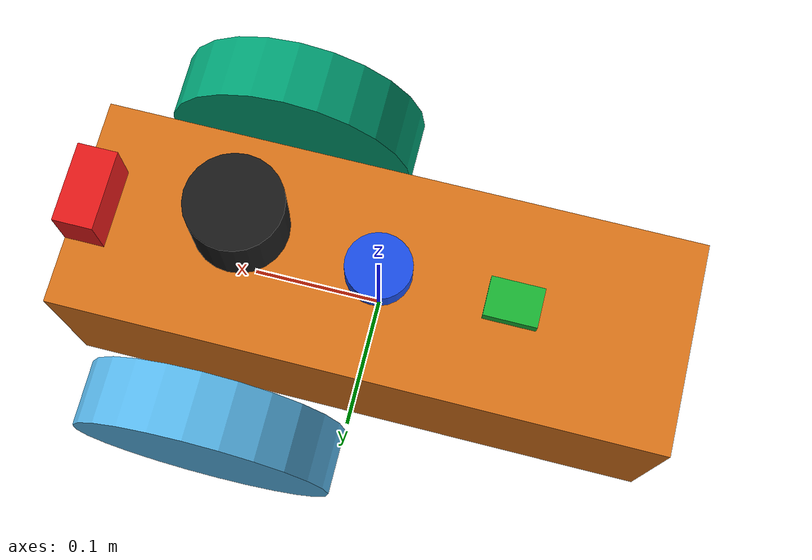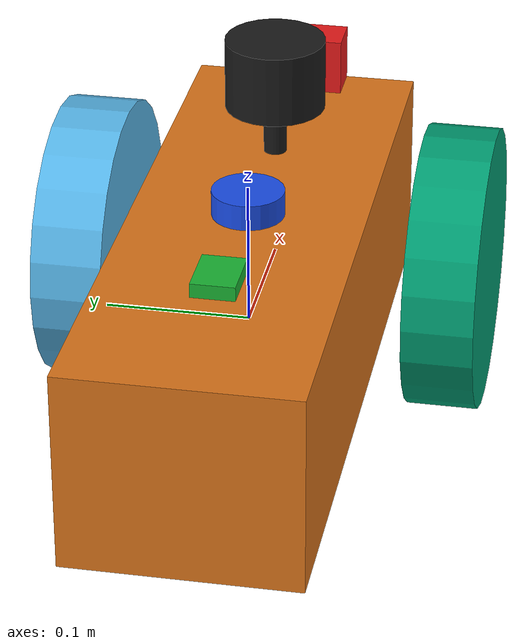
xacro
<?xml version="1.0"?>
<robot name="my_robot" xmlns:xacro="http://www.ros.org/wiki/xacro">
  <xacro:arg name="chassis_mesh" default="false"/>
  <link name="chassis">
    <inertial>
      <mass value="1.0"/>
      <origin xyz="0 0 0" rpy="0 0 0"/>
      <inertia ixx="0.02083" ixy="0.0" ixz="0.0" iyy="0.07083" iyz="0.0" izz="0.08333"/>
    </inertial>

    <collision>
      <origin xyz="0 0 0" rpy="0 0 0"/>
      <geometry>
        <box size="0.4 0.2 0.1"/>
      </geometry>
    </collision>
    <xacro:if value="$(arg chassis_mesh)">
      <visual>
        <origin xyz="0 0 0.05" rpy="0 0 0"/>
        <geometry>
          <mesh filename="package://pioneer2dx/meshes/chassis.dae" scale="0.9 0.5 0.5"/>
        </geometry>
      </visual>
    </xacro:if>
    <xacro:unless value="$(arg chassis_mesh)">
      <visual>
        <origin xyz="0 0 0.01" rpy="0 0 0"/>
        <geometry>
          <box size="0.46 0.16 0.14"/>
        </geometry>
        <material name="chassis_color"><color rgba="0.85 0.45 0.1 1.0"/></material>
      </visual>
    </xacro:unless>

    <collision>
      <origin xyz="-0.15 0 -0.05" rpy="0 0 0"/>
      <geometry>
        <sphere radius="0.05"/>
      </geometry>
    </collision>

    <visual>
      <origin xyz="-0.15 0 -0.05" rpy="0 0 0"/>
      <geometry>
        <sphere radius="0.05"/>
      </geometry>
    </visual>
  </link>

  <link name="left_wheel">
    <inertial>
      <mass value="0.5"/>
      <origin xyz="0 0 0" rpy="0 0 0"/>
      <inertia ixx="0.0027083" ixy="0.0" ixz="0.0" iyy="0.0027083" iyz="0.0" izz="0.005"/>
    </inertial>
    <collision>
      <geometry>
        <cylinder radius="0.1" length="0.05"/>
      </geometry>
    </collision>
    <visual>
      <geometry>
        <cylinder radius="0.1" length="0.05"/>
      </geometry>
    </visual>
  </link>

  <link name="right_wheel">
    <inertial>
      <origin xyz="0 0 0" rpy="0 0 0"/>
      <mass value="0.5"/>
      <inertia ixx="0.0027083" ixy="0.0" ixz="0.0" iyy="0.0027083" iyz="0.0" izz="0.005"/>
    </inertial>
    <collision>
      <geometry>
        <cylinder radius="0.1" length="0.05"/>
      </geometry>
    </collision>
    <visual>
      <geometry>
        <cylinder radius="0.1" length="0.05"/>
      </geometry>
    </visual>
  </link>

  <joint name="left_wheel_hinge" type="continuous">
    <origin xyz="0.1 0.13 0" rpy="0 1.5707 1.5707"/>
    <parent link="chassis"/>
    <child link="left_wheel"/>
    <axis xyz="0 0 1"/>
    <dynamics damping="0.05" friction="0.02"/>
  </joint>

  <joint name="right_wheel_hinge" type="continuous">
    <origin xyz="0.1 -0.13 0" rpy="0 1.5707 1.5707"/>
    <parent link="chassis"/>
    <child link="right_wheel"/>
    <axis xyz="0 0 1"/>
    <dynamics damping="0.05" friction="0.02"/>
  </joint>

  <gazebo reference="left_wheel">
    <mu1>1.0</mu1>
    <mu2>1.0</mu2>
  </gazebo>

  <gazebo reference="right_wheel">
    <mu1>1.0</mu1>
    <mu2>1.0</mu2>
  </gazebo>

  <gazebo reference="chassis">
    <mu1>0.0</mu1>
    <mu2>0.0</mu2>
  </gazebo>

  <gazebo>
    <static>false</static>
  </gazebo>

  <xacro:include filename="$(find robot_control)/urdf/sensors.xacro"/>

  <gazebo>
    <plugin name="ground_truth" filename="libgazebo_ros_p3d.so">
      <ros><namespace>/ground_truth</namespace></ros>
      <body_name>chassis</body_name>
      <frame_name>world</frame_name>
      <update_rate>50.0</update_rate>
      <gaussian_noise>0.0</gaussian_noise>
    </plugin>
  </gazebo>

  <gazebo>
    <plugin filename="libgazebo_ros2_control.so" name="gazebo_ros2_control">
      <parameters>$(find robot_control)/config/my_robot_controllers.yaml</parameters>
    </plugin>
  </gazebo>

  <ros2_control name="GazeboSystem" type="system">
    <hardware>
      <plugin>gazebo_ros2_control/GazeboSystem</plugin>
    </hardware>
    <joint name="left_wheel_hinge">
      <param name="vel_kp">1.0</param>
      <param name="vel_ki">0.5</param>
      <param name="vel_kd">0.0</param>
      <param name="vel_max_integral_error">10</param>

      <command_interface name="velocity_pid"/>
      <state_interface name="position"/>
      <state_interface name="velocity"/>
    </joint>
    <joint name="right_wheel_hinge">
      <param name="vel_kp">1.0</param>
      <param name="vel_ki">0.5</param>
      <param name="vel_kd">0.0</param>
      <param name="vel_max_integral_error">10</param>

      <command_interface name="velocity_pid"/>
      <state_interface name="position"/>
      <state_interface name="velocity"/>
    </joint>
  </ros2_control>

</robot>

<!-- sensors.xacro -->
<robot xmlns:xacro="http://www.ros.org/wiki/xacro">

  <xacro:arg name="noise_scale"  default="1.0"/>
  <xacro:arg name="imu_noise"    default="1.0"/>
  <xacro:arg name="gps_noise"    default="1.0"/>
  <xacro:arg name="lidar_noise"  default="1.0"/>
  <xacro:arg name="camera_noise" default="1.0"/>

  <xacro:property name="ns"    value="$(arg noise_scale)"/>
  <xacro:property name="k_imu" value="${ns * float('$(arg imu_noise)')}"/>
  <xacro:property name="k_gps" value="${ns * float('$(arg gps_noise)')}"/>
  <xacro:property name="k_lid" value="${ns * float('$(arg lidar_noise)')}"/>
  <xacro:property name="k_cam" value="${ns * float('$(arg camera_noise)')}"/>

  <xacro:property name="imu_gyro_std"  value="0.002"/>
  <xacro:property name="imu_gyro_bias" value="0.0005"/>
  <xacro:property name="imu_acc_std"   value="0.02"/>
  <xacro:property name="gps_h_std"     value="0.05"/>
  <xacro:property name="gps_v_std"     value="0.10"/>
  <xacro:property name="gps_vel_std"   value="0.02"/>
  <xacro:property name="lidar_std"     value="0.01"/>
  <xacro:property name="camera_std"    value="0.007"/>

  <material name="sensor_black"><color rgba="0.1 0.1 0.1 1.0"/></material>
  <material name="sensor_green"><color rgba="0.1 0.7 0.2 1.0"/></material>
  <material name="sensor_blue"><color rgba="0.1 0.3 0.9 1.0"/></material>
  <material name="sensor_red"><color rgba="0.9 0.1 0.1 1.0"/></material>

  <!-- =========================== IMU =========================== -->
  <link name="imu_link">
    <visual>
      <geometry><box size="0.04 0.03 0.01"/></geometry>
      <material name="sensor_green"/>
    </visual>
  </link>
  <joint name="imu_joint" type="fixed">
    <parent link="chassis"/>
    <child link="imu_link"/>
    <origin xyz="-0.10 0 0.086" rpy="0 0 0"/>
  </joint>

  <gazebo reference="imu_link">
    <material>Gazebo/Green</material>
    <sensor name="imu_sensor" type="imu">
      <always_on>true</always_on>
      <update_rate>100</update_rate>
      <visualize>false</visualize>
      <imu>
        <angular_velocity>
          <x><noise type="gaussian"><mean>0.0</mean><stddev>${imu_gyro_std * k_imu}</stddev><bias_mean>0.0</bias_mean><bias_stddev>${imu_gyro_bias * k_imu}</bias_stddev></noise></x>
          <y><noise type="gaussian"><mean>0.0</mean><stddev>${imu_gyro_std * k_imu}</stddev><bias_mean>0.0</bias_mean><bias_stddev>${imu_gyro_bias * k_imu}</bias_stddev></noise></y>
          <z><noise type="gaussian"><mean>0.0</mean><stddev>${imu_gyro_std * k_imu}</stddev><bias_mean>0.0</bias_mean><bias_stddev>${imu_gyro_bias * k_imu}</bias_stddev></noise></z>
        </angular_velocity>
        <linear_acceleration>
          <x><noise type="gaussian"><mean>0.0</mean><stddev>${imu_acc_std * k_imu}</stddev></noise></x>
          <y><noise type="gaussian"><mean>0.0</mean><stddev>${imu_acc_std * k_imu}</stddev></noise></y>
          <z><noise type="gaussian"><mean>0.0</mean><stddev>${imu_acc_std * k_imu}</stddev></noise></z>
        </linear_acceleration>
      </imu>
      <plugin name="imu_plugin" filename="libgazebo_ros_imu_sensor.so">
        <ros>
          <namespace>/imu</namespace>
          <remapping>~/out:=data_raw</remapping>
        </ros>
        <frame_name>imu_link</frame_name>
      </plugin>
    </sensor>
  </gazebo>

  <!-- =========================== GPS =========================== -->
  <link name="gps_link">
    <visual>
      <geometry><cylinder radius="0.025" length="0.018"/></geometry>
      <material name="sensor_blue"/>
    </visual>
  </link>
  <joint name="gps_joint" type="fixed">
    <parent link="chassis"/>
    <child link="gps_link"/>
    <origin xyz="0 0 0.09" rpy="0 0 0"/>
  </joint>

  <gazebo reference="gps_link">
    <material>Gazebo/Blue</material>
    <sensor name="gps_sensor" type="gps">
      <always_on>true</always_on>
      <update_rate>10</update_rate>
      <gps>
        <position_sensing>
          <horizontal><noise type="gaussian"><mean>0.0</mean><stddev>${gps_h_std * k_gps}</stddev></noise></horizontal>
          <vertical><noise type="gaussian"><mean>0.0</mean><stddev>${gps_v_std * k_gps}</stddev></noise></vertical>
        </position_sensing>
        <velocity_sensing>
          <horizontal><noise type="gaussian"><mean>0.0</mean><stddev>${gps_vel_std * k_gps}</stddev></noise></horizontal>
          <vertical><noise type="gaussian"><mean>0.0</mean><stddev>${gps_vel_std * k_gps}</stddev></noise></vertical>
        </velocity_sensing>
      </gps>
      <plugin name="gps_plugin" filename="libgazebo_ros_gps_sensor.so">
        <ros>
          <namespace>/gps</namespace>
          <remapping>~/out:=fix</remapping>
          <remapping>~/vel:=vel</remapping>
        </ros>
        <frame_name>gps_link</frame_name>
      </plugin>
    </sensor>
  </gazebo>

  <!-- ====================== Câmera RGB frontal ====================== -->
  <link name="camera_link">
    <visual>
      <geometry><box size="0.03 0.06 0.04"/></geometry>
      <material name="sensor_red"/>
    </visual>
  </link>
  <joint name="camera_joint" type="fixed">
    <parent link="chassis"/>
    <child link="camera_link"/>
    <origin xyz="0.215 0 0.10" rpy="0 0 0"/>
  </joint>
  <!-- frame óptico (convenção de imagem: Z para frente, X direita, Y baixo) -->
  <link name="camera_optical_link"/>
  <joint name="camera_optical_joint" type="fixed">
    <parent link="camera_link"/>
    <child link="camera_optical_link"/>
    <origin xyz="0 0 0" rpy="${-pi/2} 0 ${-pi/2}"/>
  </joint>

  <gazebo reference="camera_link">
    <material>Gazebo/Red</material>
    <sensor name="front_camera" type="camera">
      <always_on>true</always_on>
      <update_rate>20</update_rate>
      <visualize>false</visualize>
      <camera>
        <horizontal_fov>1.3963</horizontal_fov>
        <image><width>640</width><height>480</height><format>R8G8B8</format></image>
        <clip><near>0.05</near><far>20.0</far></clip>
        <noise>
          <type>gaussian</type>
          <mean>0.0</mean>
          <stddev>${camera_std * k_cam}</stddev>
        </noise>
      </camera>
      <plugin name="camera_plugin" filename="libgazebo_ros_camera.so">
        <ros><namespace>/</namespace></ros>
        <camera_name>camera</camera_name>
        <frame_name>camera_optical_link</frame_name>
      </plugin>
    </sensor>
  </gazebo>

  <!-- ======================= Lidar 2D frontal ======================= -->
  <link name="lidar_link">
    <visual>
      <geometry><cylinder radius="0.035" length="0.05"/></geometry>
      <material name="sensor_black"/>
    </visual>
    <visual>   <!-- mastro até o chassi -->
      <origin xyz="0 0 -0.045" rpy="0 0 0"/>
      <geometry><cylinder radius="0.008" length="0.04"/></geometry>
      <material name="sensor_black"/>
    </visual>
  </link>
  <joint name="lidar_joint" type="fixed">
    <parent link="chassis"/>
    <child link="lidar_link"/>
    <origin xyz="0.10 0 0.14" rpy="0 0 0"/>
  </joint>

  <gazebo reference="lidar_link">
    <material>Gazebo/Black</material>
    <sensor name="lidar_sensor" type="ray">
      <always_on>true</always_on>
      <update_rate>10</update_rate>
      <visualize>false</visualize>
      <ray>
        <scan>
          <horizontal>
            <samples>360</samples>
            <resolution>1.0</resolution>
            <min_angle>-1.5708</min_angle>
            <max_angle>1.5708</max_angle>
          </horizontal>
        </scan>
        <range><min>0.12</min><max>10.0</max><resolution>0.01</resolution></range>
        <noise>
          <type>gaussian</type>
          <mean>0.0</mean>
          <stddev>${lidar_std * k_lid}</stddev>
        </noise>
      </ray>

      <plugin name="lidar_points_plugin" filename="libgazebo_ros_ray_sensor.so">
        <ros>
          <namespace>/lidar</namespace>
          <remapping>~/out:=points</remapping>
        </ros>
        <output_type>sensor_msgs/PointCloud2</output_type>
        <frame_name>lidar_link</frame_name>
      </plugin>
      <plugin name="lidar_scan_plugin" filename="libgazebo_ros_ray_sensor.so">
        <ros>
          <namespace>/lidar</namespace>
          <remapping>~/out:=scan</remapping>
        </ros>
        <output_type>sensor_msgs/LaserScan</output_type>
        <frame_name>lidar_link</frame_name>
      </plugin>
    </sensor>
  </gazebo>

</robot>
